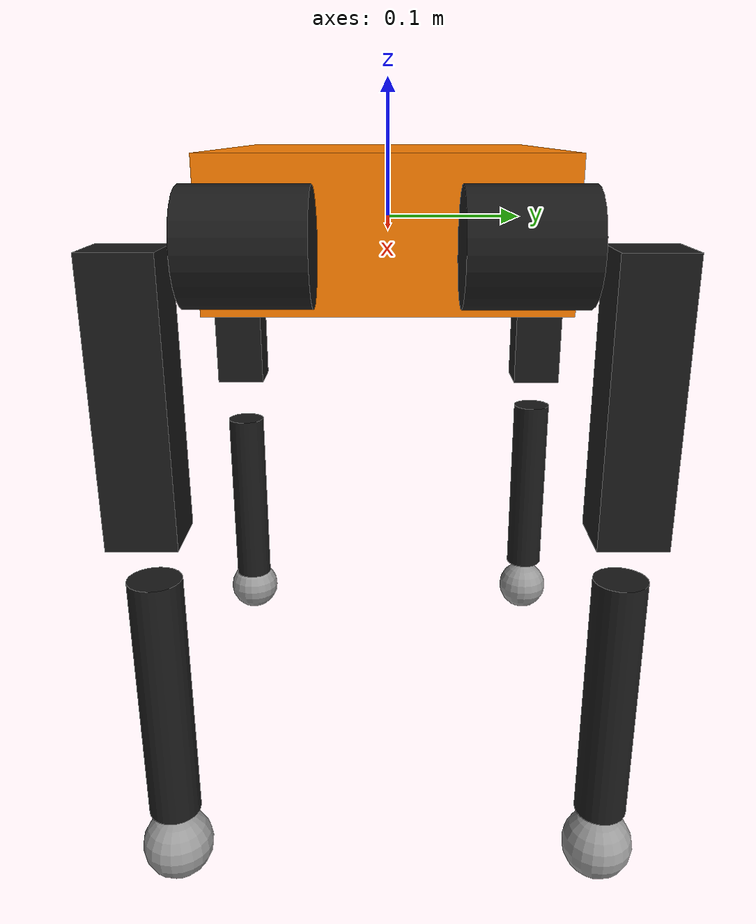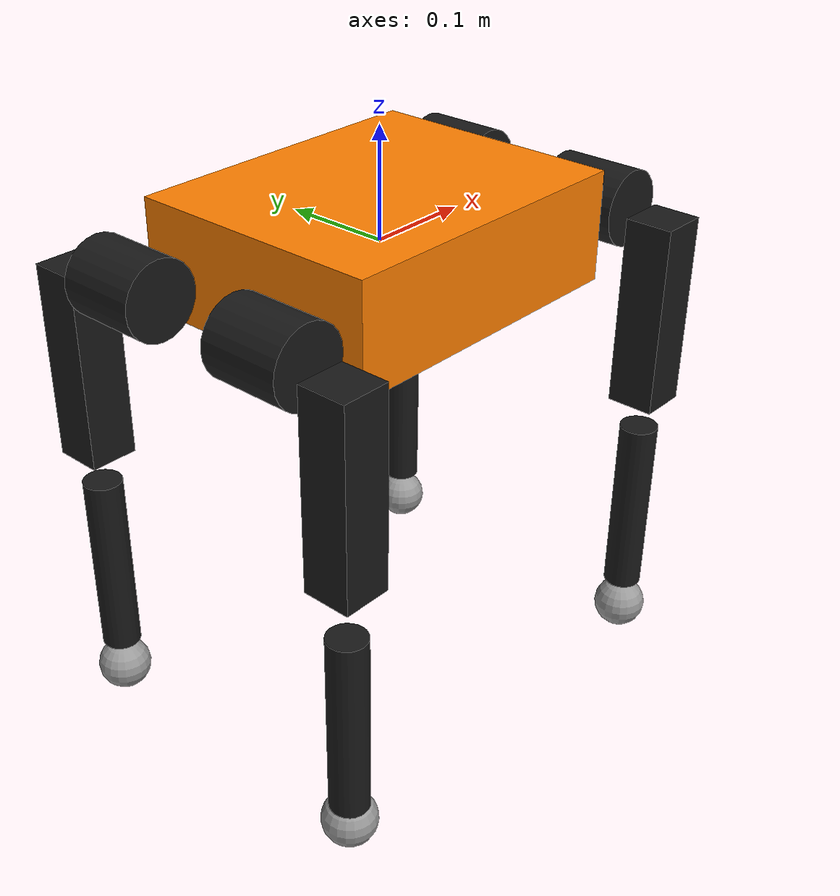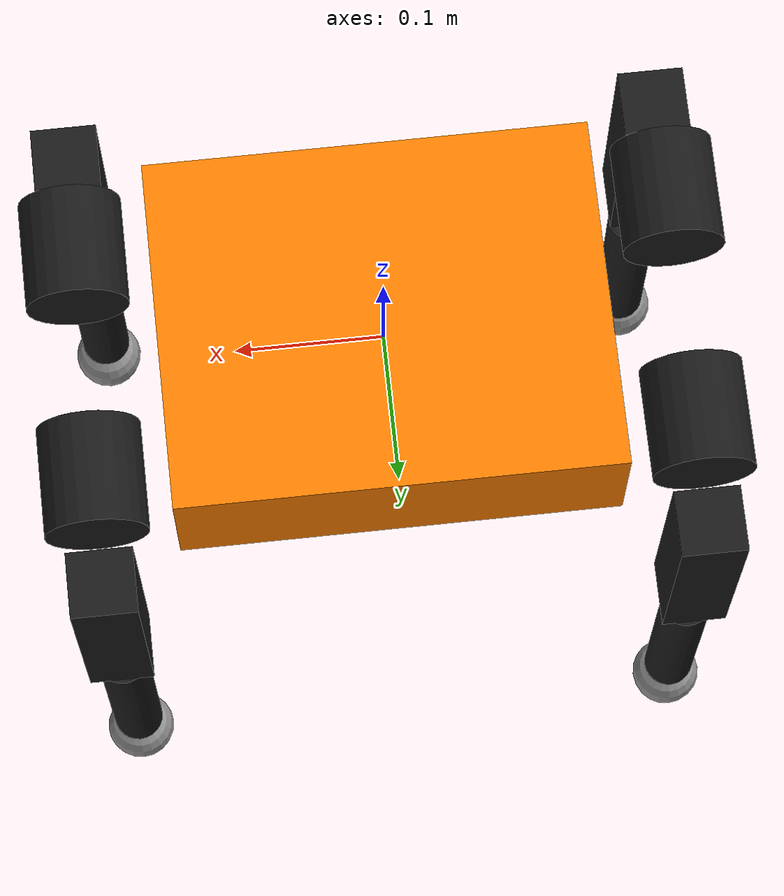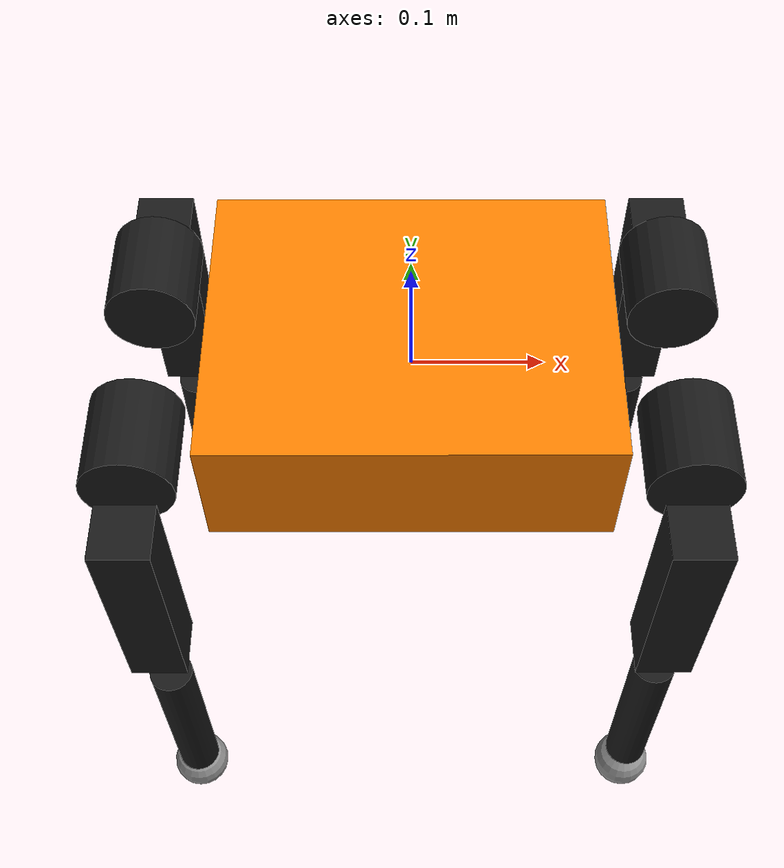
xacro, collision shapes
<?xml version="1.0"?>
<robot xmlns:xacro="http://www.ros.org/wiki/xacro" name="quattro">

  <xacro:arg
    name="calibration_file"
    default="../config/calibration.yaml"/>
  <xacro:arg name="simulation" default="false"/>
  <xacro:arg name="visual_color_override" default="false"/>
  <xacro:arg name="visual_color" default="0.1 0.1 0.1 1.0"/>
  <xacro:arg
    name="simulation_controllers"
    default="../../quattro_gazebo/config/gazebo_controllers.yaml"/>
  <xacro:property name="calibration" value="${xacro.load_yaml('$(arg calibration_file)')}"/>
  <xacro:property name="hardware_calibration" value="${calibration['joints']}"/>
  <xacro:property name="position_control" value="${calibration['position_control']}"/>

  <xacro:property name="mesh_prefix" value="package://quattro_description/meshes/stl"/>
  <xacro:property name="mesh_scale" value="1 1 1"/>

  <material name="orange">
    <color rgba="1.0 0.5 0.0 1.0"/>
  </material>
  <material name="black">
    <color rgba="0.1 0.1 0.1 1.0"/>
  </material>
  <material name="grey">
    <color rgba="0.6 0.6 0.6 1.0"/>
  </material>
  <material name="visual_color_override">
    <color rgba="$(arg visual_color)"/>
  </material>

  <xacro:macro name="stl_visual" params="filename material_name">
    <visual>
      <origin xyz="0 0 0" rpy="0 0 0"/>
      <geometry>
        <mesh filename="${mesh_prefix}/${filename}" scale="${mesh_scale}"/>
      </geometry>
      <xacro:if value="$(arg visual_color_override)">
        <material name="visual_color_override"/>
      </xacro:if>
      <xacro:unless value="$(arg visual_color_override)">
        <material name="${material_name}"/>
      </xacro:unless>
    </visual>
  </xacro:macro>

  <xacro:macro name="box_collision" params="xyz rpy size">
    <collision>
      <origin xyz="${xyz}" rpy="${rpy}"/>
      <geometry>
        <box size="${size}"/>
      </geometry>
    </collision>
  </xacro:macro>

  <xacro:macro name="cylinder_collision" params="xyz rpy radius length">
    <collision>
      <origin xyz="${xyz}" rpy="${rpy}"/>
      <geometry>
        <cylinder radius="${radius}" length="${length}"/>
      </geometry>
    </collision>
  </xacro:macro>

  <xacro:macro name="sphere_collision" params="xyz radius">
    <collision>
      <origin xyz="${xyz}" rpy="0 0 0"/>
      <geometry>
        <sphere radius="${radius}"/>
      </geometry>
    </collision>
  </xacro:macro>

  <xacro:macro name="quattro_hardware_joint" params="name lower upper">
    <joint name="${name}">
      <command_interface name="position">
        <param name="min">${lower}</param>
        <param name="max">${upper}</param>
      </command_interface>
      <state_interface name="position"/>
      <state_interface name="velocity"/>
      <state_interface name="effort"/>
      <param name="can_interface">${hardware_calibration[name]['can_interface']}</param>
      <param name="can_id">${hardware_calibration[name]['can_id']}</param>
      <param name="direction">${hardware_calibration[name]['direction']}</param>
      <param name="offset">${hardware_calibration[name]['offset']}</param>
      <param name="gear_ratio">8.0</param>
    </joint>
  </xacro:macro>

  <xacro:macro name="quattro_simulation_joint" params="name lower upper initial_value">
    <joint name="${name}">
      <command_interface name="position">
        <param name="min">${lower}</param>
        <param name="max">${upper}</param>
      </command_interface>
      <state_interface name="position">
        <param name="initial_value">${initial_value}</param>
      </state_interface>
      <state_interface name="velocity"/>
      <state_interface name="effort"/>
    </joint>
  </xacro:macro>

  <!-- Base                                                             -->
  <link name="base_link">
    <xacro:stl_visual filename="body_frame.stl" material_name="orange"/>
    <xacro:box_collision xyz="0 0 0" rpy="0 0 0" size="0.30 0.24 0.10"/>
    <inertial>
      <origin xyz="0.001210 -0.000887 -0.007933" rpy="0 0 0"/>
      <mass value="3.092"/>
      <inertia
        ixx="0.012720949"
        ixy="0.000098785"
        ixz="-0.000130401"
        iyy="0.034500612"
        iyz="0.000097314"
        izz="0.043632308"/>
    </inertial>
  </link>

  <!-- Front-left leg                                                   -->
  <link name="front_left_hip_link">
    <xacro:stl_visual filename="front_left_hip.stl" material_name="black"/>
    <xacro:cylinder_collision xyz="0 0.02 0" rpy="1.57079632679 0 0" radius="0.035" length="0.075"/>
    <inertial>
      <origin xyz="-0.003 -0.000913 -0.000423" rpy="0 0 0"/>
      <mass value="0.421"/>
      <inertia
        ixx="0.000208442"
        ixy="-9.7e-07"
        ixz="3.59e-06"
        iyy="0.00034713"
        iyz="-2.271e-06"
        izz="0.000242004"/>
    </inertial>
  </link>

  <joint name="front_left_hip_joint" type="revolute">
    <origin xyz="0.2025 0.06 0" rpy="0 0 0"/>
    <parent link="base_link"/>
    <child link="front_left_hip_link"/>
    <axis xyz="1 0 0"/>
    <!-- hip joint limit: -45~45 deg | effort: stall torque 11N·m, velocity: rated speed 120rpm = 12.5663706144 rad/s (motor: 6010-8) -->
    <limit lower="-0.7853981634" upper="0.7853981634" effort="11.0" velocity="12.5663706144"/>
    <!-- friction: no-load current 0.4A x torque constant 0.47N·m/A = 0.188N·m (Coulomb friction estimate); damping: not given in datasheet, kept at 0.0 -->
    <dynamics damping="0.0" friction="0.188"/>
  </joint>

  <link name="front_left_upper_leg_link">
    <xacro:stl_visual filename="left_upper_leg.stl" material_name="black"/>
    <xacro:box_collision xyz="0 0 -0.090" rpy="0 0 0" size="0.045 0.045 0.18"/>
    <inertial>
      <origin xyz="0.00011 -0.017289 -0.042003" rpy="0 0 0"/>
      <mass value="0.823"/>
      <inertia
        ixx="0.004380506"
        ixy="1.19e-06"
        ixz="-3.916e-06"
        iyy="0.004394642"
        iyz="0.000544858"
        izz="0.000779349"/>
    </inertial>
  </link>

  <joint name="front_left_upper_leg_joint" type="revolute">
    <origin xyz="0 0.0905 0" rpy="0 0 0"/>
    <parent link="front_left_hip_link"/>
    <child link="front_left_upper_leg_link"/>
    <axis xyz="0 1 0"/>
    <!-- upper joint limit: -90~140 deg | effort: stall torque 11N·m, velocity: rated speed 120rpm = 12.5663706144 rad/s (motor: 6010-8) -->
    <limit lower="-1.5707963268" upper="2.4434609528" effort="11.0" velocity="12.5663706144"/>
    <!-- friction: no-load current 0.4A x torque constant 0.47N·m/A = 0.188N·m (Coulomb friction estimate); damping: not given in datasheet, kept at 0.0 -->
    <dynamics damping="0.0" friction="0.188"/>
  </joint>

  <link name="front_left_lower_leg_link">
    <xacro:stl_visual filename="left_lower_leg.stl" material_name="black"/>
    <xacro:cylinder_collision xyz="0 0 -0.090" rpy="0 0 0" radius="0.018" length="0.18"/>
    <inertial>
      <origin xyz="-0.000176 0 -0.034133" rpy="0 0 0"/>
      <mass value="0.17"/>
      <inertia
        ixx="0.000604957"
        ixy="8e-09"
        ixz="2.77e-07"
        iyy="0.000622383"
        iyz="1.3e-08"
        izz="2.5776e-05"/>
    </inertial>
  </link>

  <joint name="front_left_lower_leg_joint" type="revolute">
    <origin xyz="0 0 -0.21" rpy="0 0 0"/>
    <parent link="front_left_upper_leg_link"/>
    <child link="front_left_lower_leg_link"/>
    <axis xyz="0 1 0"/>
    <!-- lower joint limit: -135~135 deg | effort: stall torque 11N·m, velocity: rated speed 120rpm = 12.5663706144 rad/s (motor: 6010-8) -->
    <limit lower="-2.3561944902" upper="2.3561944902" effort="11.0" velocity="12.5663706144"/>
    <!-- friction: no-load current 0.4A x torque constant 0.47N·m/A = 0.188N·m (Coulomb friction estimate); damping: not given in datasheet, kept at 0.0 -->
    <dynamics damping="0.0" friction="0.188"/>
  </joint>

  <link name="front_left_foot_link">
    <visual>
      <origin xyz="0 0 0" rpy="0 0 0"/>
      <geometry><sphere radius="0.025"/></geometry>
      <xacro:if value="$(arg visual_color_override)">
        <material name="visual_color_override"/>
      </xacro:if>
      <xacro:unless value="$(arg visual_color_override)">
        <material name="grey"/>
      </xacro:unless>
    </visual>
    <collision>
      <origin xyz="0 0 0" rpy="0 0 0"/>
      <geometry><sphere radius="0.025"/></geometry>
    </collision>
    <inertial>
      <origin xyz="0 0 0" rpy="0 0 0"/>
      <mass value="0.05"/>
      <inertia ixx="0.00005" ixy="0" ixz="0" iyy="0.00005" iyz="0" izz="0.00005"/>
    </inertial>
  </link>

  <joint name="front_left_foot_joint" type="fixed">
    <origin xyz="0 0 -0.21" rpy="0 0 0"/>
    <parent link="front_left_lower_leg_link"/>
    <child link="front_left_foot_link"/>
  </joint>

  <!-- Front-right leg                                                  -->
  <link name="front_right_hip_link">
    <xacro:stl_visual filename="front_right_hip.stl" material_name="black"/>
    <xacro:cylinder_collision xyz="0 -0.02 0" rpy="1.57079632679 0 0" radius="0.035" length="0.075"/>
    <inertial>
      <origin xyz="-0.003304 0.000913 -0.000118" rpy="0 0 0"/>
      <mass value="0.421"/>
      <inertia
        ixx="0.000208731"
        ixy="1.164e-06"
        ixz="3.22e-06"
        iyy="0.000346391"
        iyz="2.078e-06"
        izz="0.000240976"/>
    </inertial>
  </link>

  <joint name="front_right_hip_joint" type="revolute">
    <origin xyz="0.2025 -0.06 0" rpy="0 0 0"/>
    <parent link="base_link"/>
    <child link="front_right_hip_link"/>
    <axis xyz="1 0 0"/>
    <!-- hip joint limit: -45~45 deg | effort: stall torque 11N·m, velocity: rated speed 120rpm = 12.5663706144 rad/s (motor: 6010-8) -->
    <limit lower="-0.7853981634" upper="0.7853981634" effort="11.0" velocity="12.5663706144"/>
    <!-- friction: no-load current 0.4A x torque constant 0.47N·m/A = 0.188N·m (Coulomb friction estimate); damping: not given in datasheet, kept at 0.0 -->
    <dynamics damping="0.0" friction="0.188"/>
  </joint>

  <link name="front_right_upper_leg_link">
    <xacro:stl_visual filename="right_upper_leg.stl" material_name="black"/>
    <xacro:box_collision xyz="0 0 -0.090" rpy="0 0 0" size="0.045 0.045 0.18"/>
    <inertial>
      <origin xyz="-0.00011 0.017289 -0.042003" rpy="0 0 0"/>
      <mass value="0.823"/>
      <inertia
        ixx="0.004380506"
        ixy="1.19e-06"
        ixz="3.916e-06"
        iyy="0.004394642"
        iyz="-0.000544858"
        izz="0.000779349"/>
    </inertial>
  </link>

  <joint name="front_right_upper_leg_joint" type="revolute">
    <origin xyz="0 -0.0905 0" rpy="0 0 0"/>
    <parent link="front_right_hip_link"/>
    <child link="front_right_upper_leg_link"/>
    <axis xyz="0 1 0"/>
    <!-- upper joint limit: -90~140 deg | effort: stall torque 11N·m, velocity: rated speed 120rpm = 12.5663706144 rad/s (motor: 6010-8) -->
    <limit lower="-1.5707963268" upper="2.4434609528" effort="11.0" velocity="12.5663706144"/>
    <!-- friction: no-load current 0.4A x torque constant 0.47N·m/A = 0.188N·m (Coulomb friction estimate); damping: not given in datasheet, kept at 0.0 -->
    <dynamics damping="0.0" friction="0.188"/>
  </joint>

  <link name="front_right_lower_leg_link">
    <xacro:stl_visual filename="right_lower_leg.stl" material_name="black"/>
    <xacro:cylinder_collision xyz="0 0 -0.090" rpy="0 0 0" radius="0.018" length="0.18"/>
    <inertial>
      <origin xyz="0.000176 0 -0.034133" rpy="0 0 0"/>
      <mass value="0.17"/>
      <inertia
        ixx="0.000604957"
        ixy="8e-09"
        ixz="-2.77e-07"
        iyy="0.000622383"
        iyz="-1.3e-08"
        izz="2.5776e-05"/>
    </inertial>
  </link>

  <joint name="front_right_lower_leg_joint" type="revolute">
    <origin xyz="0 0 -0.21" rpy="0 0 0"/>
    <parent link="front_right_upper_leg_link"/>
    <child link="front_right_lower_leg_link"/>
    <axis xyz="0 1 0"/>
    <!-- lower joint limit: -135~135 deg | effort: stall torque 11N·m, velocity: rated speed 120rpm = 12.5663706144 rad/s (motor: 6010-8) -->
    <limit lower="-2.3561944902" upper="2.3561944902" effort="11.0" velocity="12.5663706144"/>
    <!-- friction: no-load current 0.4A x torque constant 0.47N·m/A = 0.188N·m (Coulomb friction estimate); damping: not given in datasheet, kept at 0.0 -->
    <dynamics damping="0.0" friction="0.188"/>
  </joint>

  <link name="front_right_foot_link">
    <visual>
      <origin xyz="0 0 0" rpy="0 0 0"/>
      <geometry><sphere radius="0.025"/></geometry>
      <xacro:if value="$(arg visual_color_override)">
        <material name="visual_color_override"/>
      </xacro:if>
      <xacro:unless value="$(arg visual_color_override)">
        <material name="grey"/>
      </xacro:unless>
    </visual>
    <collision>
      <origin xyz="0 0 0" rpy="0 0 0"/>
      <geometry><sphere radius="0.025"/></geometry>
    </collision>
    <inertial>
      <origin xyz="0 0 0" rpy="0 0 0"/>
      <mass value="0.05"/>
      <inertia ixx="0.00005" ixy="0" ixz="0" iyy="0.00005" iyz="0" izz="0.00005"/>
    </inertial>
  </link>

  <joint name="front_right_foot_joint" type="fixed">
    <origin xyz="0 0 -0.21" rpy="0 0 0"/>
    <parent link="front_right_lower_leg_link"/>
    <child link="front_right_foot_link"/>
  </joint>

  <!-- Back-left leg                                                    -->
  <link name="back_left_hip_link">
    <xacro:stl_visual filename="back_left_hip.stl" material_name="black"/>
    <xacro:cylinder_collision xyz="0 0.02 0" rpy="1.57079632679 0 0" radius="0.035" length="0.075"/>
    <inertial>
      <origin xyz="0.003304 -0.000713 -0.000118" rpy="0 0 0"/>
      <mass value="0.421"/>
      <inertia
        ixx="0.000208731"
        ixy="1.164e-06"
        ixz="-3.22e-06"
        iyy="0.000346392"
        iyz="-2.078e-06"
        izz="0.000240976"/>
    </inertial>
  </link>

  <joint name="back_left_hip_joint" type="revolute">
    <origin xyz="-0.2025 0.06 0" rpy="0 0 0"/>
    <parent link="base_link"/>
    <child link="back_left_hip_link"/>
    <axis xyz="1 0 0"/>
    <!-- hip joint limit: -45~45 deg | effort: stall torque 11N·m, velocity: rated speed 120rpm = 12.5663706144 rad/s (motor: 6010-8) -->
    <limit lower="-0.7853981634" upper="0.7853981634" effort="11.0" velocity="12.5663706144"/>
    <!-- friction: no-load current 0.4A x torque constant 0.47N·m/A = 0.188N·m (Coulomb friction estimate); damping: not given in datasheet, kept at 0.0 -->
    <dynamics damping="0.0" friction="0.188"/>
  </joint>

  <link name="back_left_upper_leg_link">
    <xacro:stl_visual filename="left_upper_leg.stl" material_name="black"/>
    <xacro:box_collision xyz="0 0 -0.090" rpy="0 0 0" size="0.045 0.045 0.18"/>
    <inertial>
      <origin xyz="0.00011 -0.017289 -0.042003" rpy="0 0 0"/>
      <mass value="0.823"/>
      <inertia
        ixx="0.004380506"
        ixy="1.19e-06"
        ixz="-3.916e-06"
        iyy="0.004394642"
        iyz="0.000544858"
        izz="0.000779349"/>
    </inertial>
  </link>

  <joint name="back_left_upper_leg_joint" type="revolute">
    <origin xyz="0 0.0905 0" rpy="0 0 0"/>
    <parent link="back_left_hip_link"/>
    <child link="back_left_upper_leg_link"/>
    <axis xyz="0 1 0"/>
    <!-- upper joint limit: -90~140 deg | effort: stall torque 11N·m, velocity: rated speed 120rpm = 12.5663706144 rad/s (motor: 6010-8) -->
    <limit lower="-1.5707963268" upper="2.4434609528" effort="11.0" velocity="12.5663706144"/>
    <!-- friction: no-load current 0.4A x torque constant 0.47N·m/A = 0.188N·m (Coulomb friction estimate); damping: not given in datasheet, kept at 0.0 -->
    <dynamics damping="0.0" friction="0.188"/>
  </joint>

  <link name="back_left_lower_leg_link">
    <xacro:stl_visual filename="left_lower_leg.stl" material_name="black"/>
    <xacro:cylinder_collision xyz="0 0 -0.090" rpy="0 0 0" radius="0.018" length="0.18"/>
    <inertial>
      <origin xyz="-0.000176 0 -0.034133" rpy="0 0 0"/>
      <mass value="0.17"/>
      <inertia
        ixx="0.000604957"
        ixy="8e-09"
        ixz="2.77e-07"
        iyy="0.000622383"
        iyz="1.3e-08"
        izz="2.5776e-05"/>
    </inertial>
  </link>

  <joint name="back_left_lower_leg_joint" type="revolute">
    <origin xyz="0 0 -0.21" rpy="0 0 0"/>
    <parent link="back_left_upper_leg_link"/>
    <child link="back_left_lower_leg_link"/>
    <axis xyz="0 1 0"/>
    <!-- lower joint limit: -135~135 deg | effort: stall torque 11N·m, velocity: rated speed 120rpm = 12.5663706144 rad/s (motor: 6010-8) -->
    <limit lower="-2.3561944902" upper="2.3561944902" effort="11.0" velocity="12.5663706144"/>
    <!-- friction: no-load current 0.4A x torque constant 0.47N·m/A = 0.188N·m (Coulomb friction estimate); damping: not given in datasheet, kept at 0.0 -->
    <dynamics damping="0.0" friction="0.188"/>
  </joint>

  <link name="back_left_foot_link">
    <visual>
      <origin xyz="0 0 0" rpy="0 0 0"/>
      <geometry><sphere radius="0.025"/></geometry>
      <xacro:if value="$(arg visual_color_override)">
        <material name="visual_color_override"/>
      </xacro:if>
      <xacro:unless value="$(arg visual_color_override)">
        <material name="grey"/>
      </xacro:unless>
    </visual>
    <collision>
      <origin xyz="0 0 0" rpy="0 0 0"/>
      <geometry><sphere radius="0.025"/></geometry>
    </collision>
    <inertial>
      <origin xyz="0 0 0" rpy="0 0 0"/>
      <mass value="0.05"/>
      <inertia ixx="0.00005" ixy="0" ixz="0" iyy="0.00005" iyz="0" izz="0.00005"/>
    </inertial>
  </link>

  <joint name="back_left_foot_joint" type="fixed">
    <origin xyz="0 0 -0.21" rpy="0 0 0"/>
    <parent link="back_left_lower_leg_link"/>
    <child link="back_left_foot_link"/>
  </joint>

  <!-- Back-right leg                                                   -->
  <link name="back_right_hip_link">
    <xacro:stl_visual filename="back_right_hip.stl" material_name="black"/>
    <xacro:cylinder_collision xyz="0 -0.02 0" rpy="1.57079632679 0 0" radius="0.035" length="0.075"/>
    <inertial>
      <origin xyz="0.003 0.001113 -0.000423" rpy="0 0 0"/>
      <mass value="0.421"/>
      <inertia
        ixx="0.000208442"
        ixy="-9.7e-07"
        ixz="-3.59e-06"
        iyy="0.00034713"
        iyz="2.271e-06"
        izz="0.000242004"/>
    </inertial>
  </link>

  <joint name="back_right_hip_joint" type="revolute">
    <origin xyz="-0.2025 -0.06 0" rpy="0 0 0"/>
    <parent link="base_link"/>
    <child link="back_right_hip_link"/>
    <axis xyz="1 0 0"/>
    <!-- hip joint limit: -45~45 deg | effort: stall torque 11N·m, velocity: rated speed 120rpm = 12.5663706144 rad/s (motor: 6010-8) -->
    <limit lower="-0.7853981634" upper="0.7853981634" effort="11.0" velocity="12.5663706144"/>
    <!-- friction: no-load current 0.4A x torque constant 0.47N·m/A = 0.188N·m (Coulomb friction estimate); damping: not given in datasheet, kept at 0.0 -->
    <dynamics damping="0.0" friction="0.188"/>
  </joint>

  <link name="back_right_upper_leg_link">
    <xacro:stl_visual filename="right_upper_leg.stl" material_name="black"/>
    <xacro:box_collision xyz="0 0 -0.090" rpy="0 0 0" size="0.045 0.045 0.18"/>
    <inertial>
      <origin xyz="-0.00011 0.017289 -0.042003" rpy="0 0 0"/>
      <mass value="0.823"/>
      <inertia
        ixx="0.004380506"
        ixy="1.19e-06"
        ixz="3.916e-06"
        iyy="0.004394642"
        iyz="-0.000544858"
        izz="0.000779349"/>
    </inertial>
  </link>

  <joint name="back_right_upper_leg_joint" type="revolute">
    <origin xyz="0 -0.0905 0" rpy="0 0 0"/>
    <parent link="back_right_hip_link"/>
    <child link="back_right_upper_leg_link"/>
    <axis xyz="0 1 0"/>
    <!-- upper joint limit: -90~140 deg | effort: stall torque 11N·m, velocity: rated speed 120rpm = 12.5663706144 rad/s (motor: 6010-8) -->
    <limit lower="-1.5707963268" upper="2.4434609528" effort="11.0" velocity="12.5663706144"/>
    <!-- friction: no-load current 0.4A x torque constant 0.47N·m/A = 0.188N·m (Coulomb friction estimate); damping: not given in datasheet, kept at 0.0 -->
    <dynamics damping="0.0" friction="0.188"/>
  </joint>

  <link name="back_right_lower_leg_link">
    <xacro:stl_visual filename="right_lower_leg.stl" material_name="black"/>
    <xacro:cylinder_collision xyz="0 0 -0.105" rpy="0 0 0" radius="0.018" length="0.18"/>
    <inertial>
      <origin xyz="0.000176 0 -0.034133" rpy="0 0 0"/>
      <mass value="0.17"/>
      <inertia
        ixx="0.000604957"
        ixy="8e-09"
        ixz="-2.77e-07"
        iyy="0.000622383"
        iyz="-1.3e-08"
        izz="2.5776e-05"/>
    </inertial>
  </link>

  <joint name="back_right_lower_leg_joint" type="revolute">
    <origin xyz="0 0 -0.21" rpy="0 0 0"/>
    <parent link="back_right_upper_leg_link"/>
    <child link="back_right_lower_leg_link"/>
    <axis xyz="0 1 0"/>
    <!-- lower joint limit: -135~135 deg | effort: stall torque 11N·m, velocity: rated speed 120rpm = 12.5663706144 rad/s (motor: 6010-8) -->
    <limit lower="-2.3561944902" upper="2.3561944902" effort="11.0" velocity="12.5663706144"/>
    <!-- friction: no-load current 0.4A x torque constant 0.47N·m/A = 0.188N·m (Coulomb friction estimate); damping: not given in datasheet, kept at 0.0 -->
    <dynamics damping="0.0" friction="0.188"/>
  </joint>

  <link name="back_right_foot_link">
    <visual>
      <origin xyz="0 0 0" rpy="0 0 0"/>
      <geometry><sphere radius="0.025"/></geometry>
      <xacro:if value="$(arg visual_color_override)">
        <material name="visual_color_override"/>
      </xacro:if>
      <xacro:unless value="$(arg visual_color_override)">
        <material name="grey"/>
      </xacro:unless>
    </visual>
    <collision>
      <origin xyz="0 0 0" rpy="0 0 0"/>
      <geometry><sphere radius="0.025"/></geometry>
    </collision>
    <inertial>
      <origin xyz="0 0 0" rpy="0 0 0"/>
      <mass value="0.05"/>
      <inertia ixx="0.00005" ixy="0" ixz="0" iyy="0.00005" iyz="0" izz="0.00005"/>
    </inertial>
  </link>

  <joint name="back_right_foot_joint" type="fixed">
    <origin xyz="0 0 -0.21" rpy="0 0 0"/>
    <parent link="back_right_lower_leg_link"/>
    <child link="back_right_foot_link"/>
  </joint>

  <xacro:unless value="$(arg simulation)">
    <ros2_control name="QuattroSystem" type="system">
      <hardware>
        <plugin>quattro_hardware/QuattroSystem</plugin>
        <param name="current_limit">${position_control['current_limit']}</param>
        <param name="position_gain">${position_control['position_gain']}</param>
        <param name="velocity_gain">${position_control['velocity_gain']}</param>
        <param name="velocity_integrator_gain">${position_control['velocity_integrator_gain']}</param>
        <param name="feedback_timeout_ms">150</param>
        <param name="heartbeat_timeout_ms">400</param>
        <param name="startup_timeout_ms">1000</param>
        <param name="closed_loop_timeout_ms">500</param>
        <param name="encoder_sync_timeout_ms">200</param>
        <param name="encoder_sync_frames">2</param>
        <param name="command_timeout_ms">250</param>
        <param name="scheduling_warning_ms">50</param>
        <param name="rotor_velocity_limit_rev_s">10.0</param>
        <param name="telemetry_period_ms">500</param>
      </hardware>
      <xacro:quattro_hardware_joint name="front_left_hip_joint" lower="-0.7853981634" upper="0.7853981634"/>
      <xacro:quattro_hardware_joint name="front_left_upper_leg_joint" lower="-1.5707963268" upper="2.4434609528"/>
      <xacro:quattro_hardware_joint name="front_left_lower_leg_joint" lower="-2.3561944902" upper="2.3561944902"/>
      <xacro:quattro_hardware_joint name="front_right_hip_joint" lower="-0.7853981634" upper="0.7853981634"/>
      <xacro:quattro_hardware_joint name="front_right_upper_leg_joint" lower="-1.5707963268" upper="2.4434609528"/>
      <xacro:quattro_hardware_joint name="front_right_lower_leg_joint" lower="-2.3561944902" upper="2.3561944902"/>
      <xacro:quattro_hardware_joint name="back_left_hip_joint" lower="-0.7853981634" upper="0.7853981634"/>
      <xacro:quattro_hardware_joint name="back_left_upper_leg_joint" lower="-1.5707963268" upper="2.4434609528"/>
      <xacro:quattro_hardware_joint name="back_left_lower_leg_joint" lower="-2.3561944902" upper="2.3561944902"/>
      <xacro:quattro_hardware_joint name="back_right_hip_joint" lower="-0.7853981634" upper="0.7853981634"/>
      <xacro:quattro_hardware_joint name="back_right_upper_leg_joint" lower="-1.5707963268" upper="2.4434609528"/>
      <xacro:quattro_hardware_joint name="back_right_lower_leg_joint" lower="-2.3561944902" upper="2.3561944902"/>
      <gpio name="safety_mode">
        <command_interface name="walking_active"/>
      </gpio>
    </ros2_control>
  </xacro:unless>

  <xacro:if value="$(arg simulation)">
    <ros2_control name="GazeboSimSystem" type="system">
      <hardware>
        <plugin>gz_ros2_control/GazeboSimSystem</plugin>
      </hardware>
      <xacro:quattro_simulation_joint name="front_left_hip_joint" lower="-0.7853981634" upper="0.7853981634" initial_value="0.0"/>
      <xacro:quattro_simulation_joint name="front_left_upper_leg_joint" lower="-1.5707963268" upper="2.4434609528" initial_value="0.63356747785"/>
      <xacro:quattro_simulation_joint name="front_left_lower_leg_joint" lower="-2.3561944902" upper="2.3561944902" initial_value="-1.53223802029"/>
      <xacro:quattro_simulation_joint name="front_right_hip_joint" lower="-0.7853981634" upper="0.7853981634" initial_value="0.0"/>
      <xacro:quattro_simulation_joint name="front_right_upper_leg_joint" lower="-1.5707963268" upper="2.4434609528" initial_value="0.63356747785"/>
      <xacro:quattro_simulation_joint name="front_right_lower_leg_joint" lower="-2.3561944902" upper="2.3561944902" initial_value="-1.53223802029"/>
      <xacro:quattro_simulation_joint name="back_left_hip_joint" lower="-0.7853981634" upper="0.7853981634" initial_value="0.0"/>
      <xacro:quattro_simulation_joint name="back_left_upper_leg_joint" lower="-1.5707963268" upper="2.4434609528" initial_value="0.63356747785"/>
      <xacro:quattro_simulation_joint name="back_left_lower_leg_joint" lower="-2.3561944902" upper="2.3561944902" initial_value="-1.53223802029"/>
      <xacro:quattro_simulation_joint name="back_right_hip_joint" lower="-0.7853981634" upper="0.7853981634" initial_value="0.0"/>
      <xacro:quattro_simulation_joint name="back_right_upper_leg_joint" lower="-1.5707963268" upper="2.4434609528" initial_value="0.63356747785"/>
      <xacro:quattro_simulation_joint name="back_right_lower_leg_joint" lower="-2.3561944902" upper="2.3561944902" initial_value="-1.53223802029"/>
    </ros2_control>

    <gazebo>
      <plugin
        filename="libgz_ros2_control-system.so"
        name="gz_ros2_control::GazeboSimROS2ControlPlugin">
        <parameters>$(arg simulation_controllers)</parameters>
      </plugin>
    </gazebo>
  </xacro:if>

</robot>
